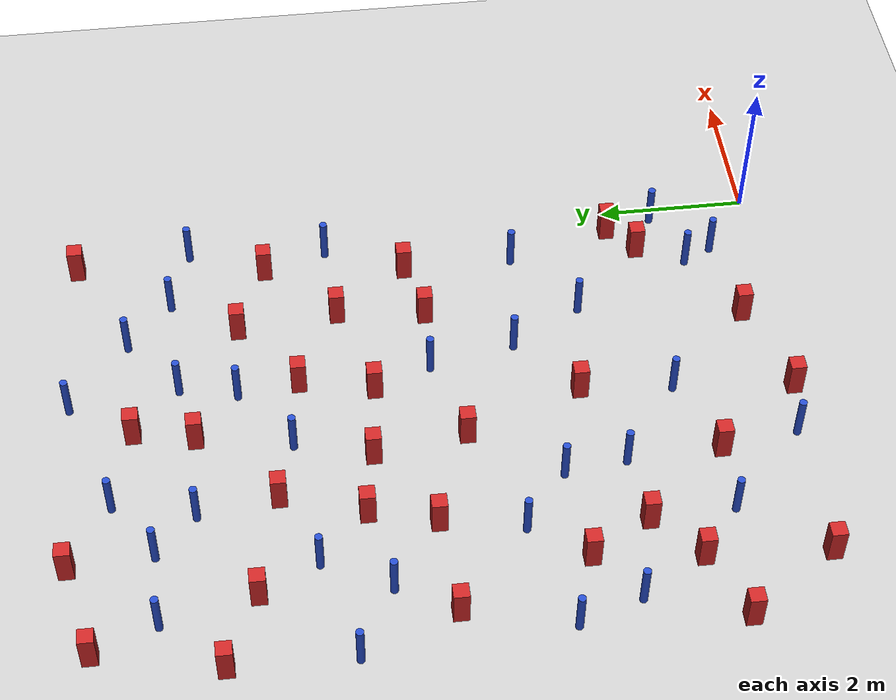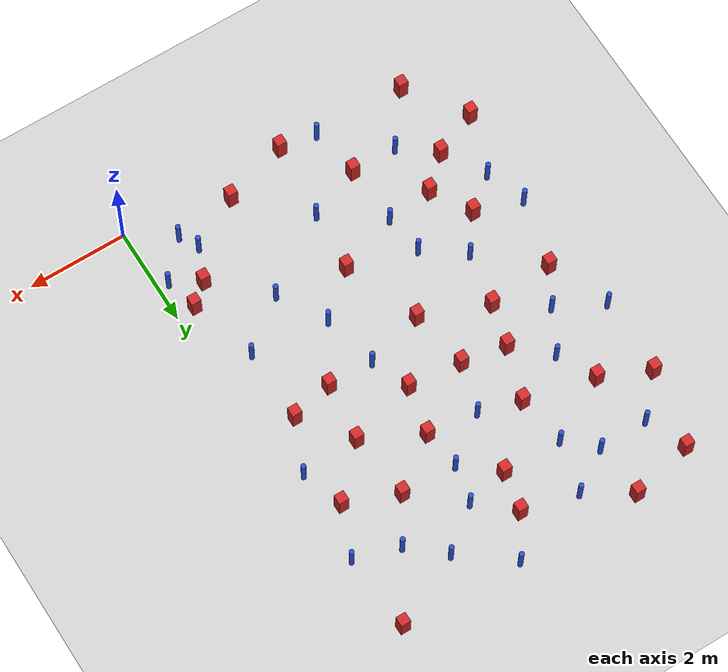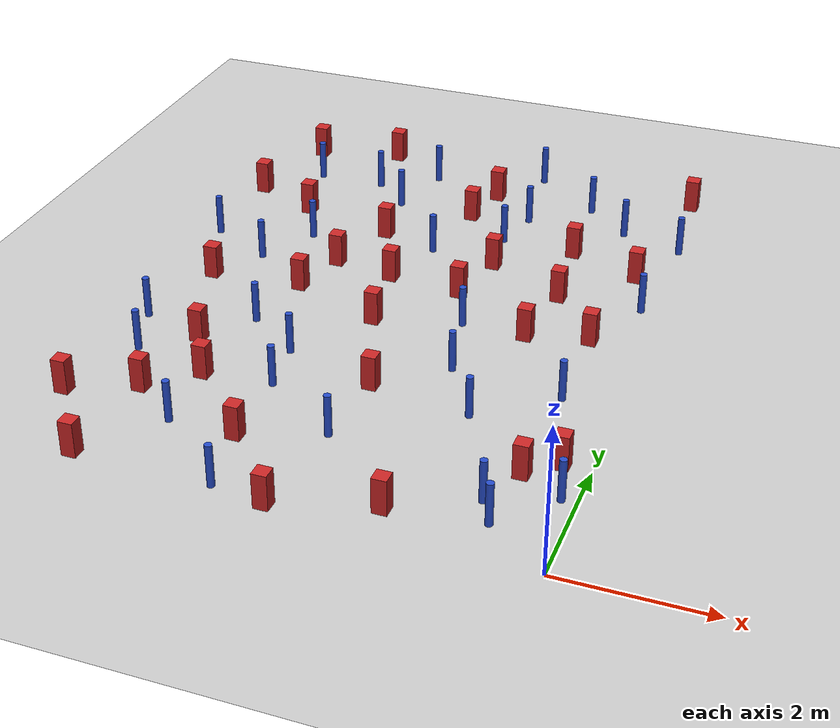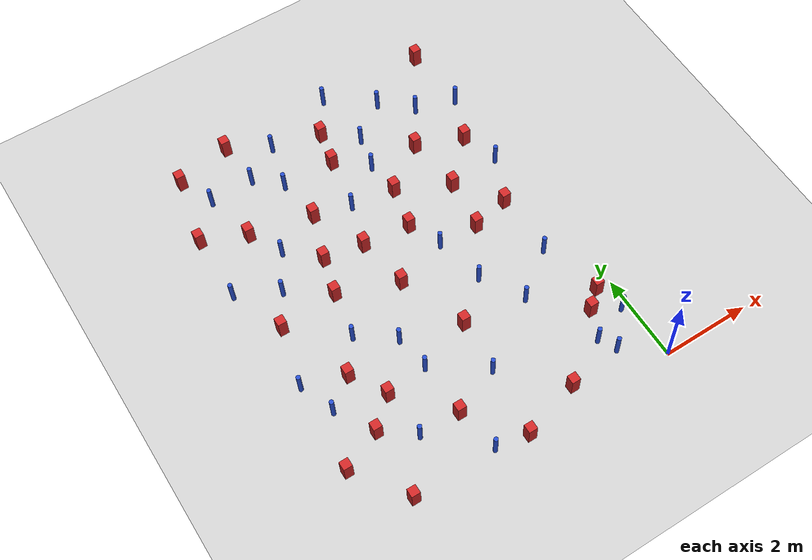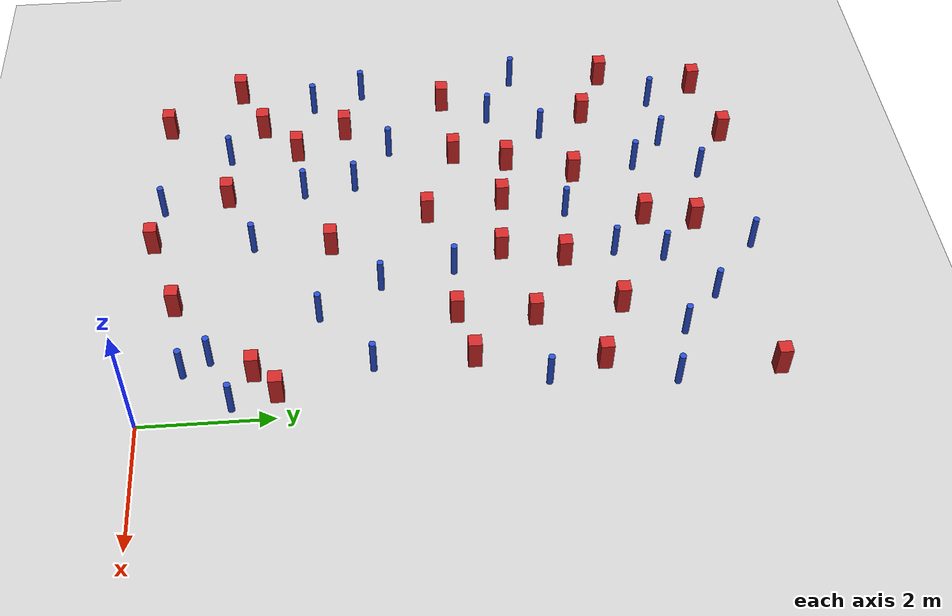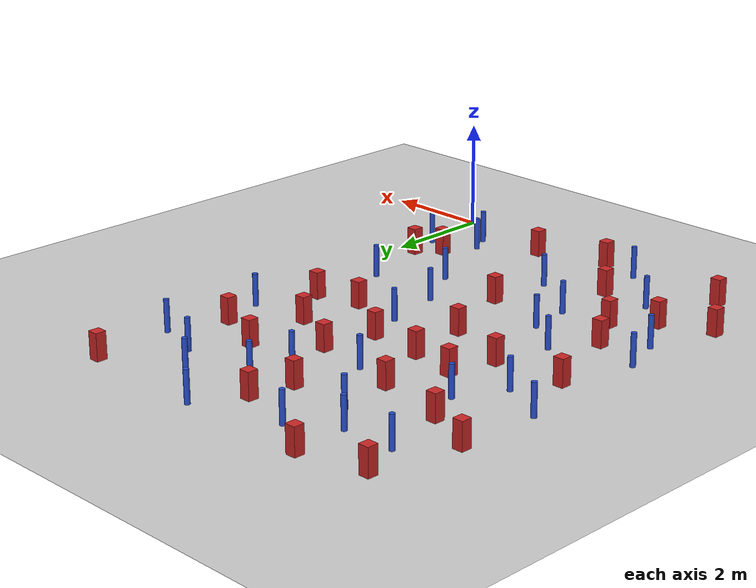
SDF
<sdf version="1.6">
 <world name="default">
  <model name="ground_plane">
   <static>1</static>
   <link name="link">
    <collision name="collision">
     <geometry><plane><normal>0 0 1</normal><size>100 100</size></plane></geometry>
     <surface><friction><ode><mu>100</mu><mu2>50</mu2></ode></friction></surface>
    </collision>
    <visual name="visual">
     <cast_shadows>0</cast_shadows>
     <geometry><plane><normal>0 0 1</normal><size>100 100</size></plane></geometry>
     <material>
      <script><uri>file://media/materials/scripts/gazebo.material</uri><name>Gazebo/Grey</name></script>
     </material>
    </visual>
   </link>
  </model>
  <model name="square_post_obstacle0">
   <static>0</static>
   <link name="link">
    <pose>0 0 0.25 0 -0 0</pose>
    <inertial>
     <mass>100</mass>
     <inertia>
      <ixx>0.166667</ixx>
      <ixy>0</ixy>
      <ixz>0</ixz>
      <iyy>0.166667</iyy>
      <iyz>0</iyz>
      <izz>0.166667</izz>
     </inertia>
    </inertial>
    <collision name="collision"><geometry><box><size>0.2 0.2 0.5</size></box></geometry></collision>
    <visual name="visual">
     <geometry><box><size>0.2 0.2 0.5</size></box></geometry>
     <material>
      <script><name>Gazebo/Red</name><uri>file://media/materials/scripts/gazebo.material</uri></script>
     </material>
    </visual>
   </link>
   <pose>-6.057 0.183912 0 -1e-06 7e-06 -0.000607</pose>
  </model>
  <model name="pole_obstacle0">
   <static>0</static>
   <link name="link">
    <pose>0 0 0.3 0 -0 0</pose>
    <inertial>
     <mass>1</mass>
     <inertia><ixx>0.145833</ixx><ixy>0</ixy><ixz>0</ixz><iyy>0.145833</iyy><iyz>0</iyz><izz>0.125</izz></inertia>
    </inertial>
    <collision name="collision">
     <geometry><cylinder><radius>0.05</radius><length>0.6</length></cylinder></geometry>
    </collision>
    <visual name="visual">
     <geometry><cylinder><radius>0.05</radius><length>0.6</length></cylinder></geometry>
     <material>
      <script><name>Gazebo/Blue</name><uri>file://media/materials/scripts/gazebo.material</uri></script>
     </material>
    </visual>
   </link>
   <pose>-6.20952 8.3445 -5e-06 0 0 -2.6e-05</pose>
  </model>
  <model name="square_post_obstacle2">
   <static>0</static>
   <link name="link">
    <pose>0 0 0.25 0 -0 0</pose>
    <inertial>
     <mass>100</mass>
     <inertia>
      <ixx>0.166667</ixx>
      <ixy>0</ixy>
      <ixz>0</ixz>
      <iyy>0.166667</iyy>
      <iyz>0</iyz>
      <izz>0.166667</izz>
     </inertia>
    </inertial>
    <collision name="collision"><geometry><box><size>0.2 0.2 0.5</size></box></geometry></collision>
    <visual name="visual">
     <geometry><box><size>0.2 0.2 0.5</size></box></geometry>
     <material>
      <script><name>Gazebo/Red</name><uri>file://media/materials/scripts/gazebo.material</uri></script>
     </material>
    </visual>
   </link>
   <pose>-3.76358 4.37344 0 -1e-06 7e-06 -0.000607</pose>
  </model>
  <model name="square_post_obstacle3">
   <static>0</static>
   <link name="link">
    <pose>0 0 0.25 0 -0 0</pose>
    <inertial>
     <mass>100</mass>
     <inertia>
      <ixx>0.166667</ixx>
      <ixy>0</ixy>
      <ixz>0</ixz>
      <iyy>0.166667</iyy>
      <iyz>0</iyz>
      <izz>0.166667</izz>
     </inertia>
    </inertial>
    <collision name="collision"><geometry><box><size>0.2 0.2 0.5</size></box></geometry></collision>
    <visual name="visual">
     <geometry><box><size>0.2 0.2 0.5</size></box></geometry>
     <material>
      <script><name>Gazebo/Red</name><uri>file://media/materials/scripts/gazebo.material</uri></script>
     </material>
    </visual>
   </link>
   <pose>-4.34566 1.1971 0 -1e-06 7e-06 -0.000607</pose>
  </model>
  <model name="pole_obstacle5">
   <static>0</static>
   <link name="link">
    <pose>0 0 0.3 0 -0 0</pose>
    <inertial>
     <mass>1</mass>
     <inertia><ixx>0.145833</ixx><ixy>0</ixy><ixz>0</ixz><iyy>0.145833</iyy><iyz>0</iyz><izz>0.125</izz></inertia>
    </inertial>
    <collision name="collision">
     <geometry><cylinder><radius>0.05</radius><length>0.6</length></cylinder></geometry>
    </collision>
    <visual name="visual">
     <geometry><cylinder><radius>0.05</radius><length>0.6</length></cylinder></geometry>
     <material>
      <script><name>Gazebo/Blue</name><uri>file://media/materials/scripts/gazebo.material</uri></script>
     </material>
    </visual>
   </link>
   <pose>-3.27165 1.61809 -5e-06 0 -0 1.3e-05</pose>
  </model>
  <model name="square_post_obstacle7">
   <static>0</static>
   <link name="link">
    <pose>0 0 0.25 0 -0 0</pose>
    <inertial>
     <mass>100</mass>
     <inertia>
      <ixx>0.166667</ixx>
      <ixy>0</ixy>
      <ixz>0</ixz>
      <iyy>0.166667</iyy>
      <iyz>0</iyz>
      <izz>0.166667</izz>
     </inertia>
    </inertial>
    <collision name="collision"><geometry><box><size>0.2 0.2 0.5</size></box></geometry></collision>
    <visual name="visual">
     <geometry><box><size>0.2 0.2 0.5</size></box></geometry>
     <material>
      <script><name>Gazebo/Red</name><uri>file://media/materials/scripts/gazebo.material</uri></script>
     </material>
    </visual>
   </link>
   <pose>-5.09435 4.88945 0 -1e-06 7e-06 -0.000607</pose>
  </model>
  <model name="pole_obstacle14">
   <static>0</static>
   <link name="link">
    <pose>0 0 0.3 0 -0 0</pose>
    <inertial>
     <mass>1</mass>
     <inertia><ixx>0.145833</ixx><ixy>0</ixy><ixz>0</ixz><iyy>0.145833</iyy><iyz>0</iyz><izz>0.125</izz></inertia>
    </inertial>
    <collision name="collision">
     <geometry><cylinder><radius>0.05</radius><length>0.6</length></cylinder></geometry>
    </collision>
    <visual name="visual">
     <geometry><cylinder><radius>0.05</radius><length>0.6</length></cylinder></geometry>
     <material>
      <script><name>Gazebo/Blue</name><uri>file://media/materials/scripts/gazebo.material</uri></script>
     </material>
    </visual>
   </link>
   <pose>-1.05503 1.01681 -5e-06 0 0 -1.5e-05</pose>
  </model>
  <model name="pole_obstacle15">
   <static>0</static>
   <link name="link">
    <pose>0 0 0.3 0 -0 0</pose>
    <inertial>
     <mass>1</mass>
     <inertia><ixx>0.145833</ixx><ixy>0</ixy><ixz>0</ixz><iyy>0.145833</iyy><iyz>0</iyz><izz>0.125</izz></inertia>
    </inertial>
    <collision name="collision">
     <geometry><cylinder><radius>0.05</radius><length>0.6</length></cylinder></geometry>
    </collision>
    <visual name="visual">
     <geometry><cylinder><radius>0.05</radius><length>0.6</length></cylinder></geometry>
     <material>
      <script><name>Gazebo/Blue</name><uri>file://media/materials/scripts/gazebo.material</uri></script>
     </material>
    </visual>
   </link>
   <pose>-4.40507 8.88915 -5e-06 0 -0 1.9e-05</pose>
  </model>
  <model name="square_post_obstacle13">
   <static>0</static>
   <link name="link">
    <pose>0 0 0.25 0 -0 0</pose>
    <inertial>
     <mass>100</mass>
     <inertia>
      <ixx>0.166667</ixx>
      <ixy>0</ixy>
      <ixz>0</ixz>
      <iyy>0.166667</iyy>
      <iyz>0</iyz>
      <izz>0.166667</izz>
     </inertia>
    </inertial>
    <collision name="collision"><geometry><box><size>0.2 0.2 0.5</size></box></geometry></collision>
    <visual name="visual">
     <geometry><box><size>0.2 0.2 0.5</size></box></geometry>
     <material>
      <script><name>Gazebo/Red</name><uri>file://media/materials/scripts/gazebo.material</uri></script>
     </material>
    </visual>
   </link>
   <pose>-1.67024 7.18728 0 -1e-06 7e-06 -0.000607</pose>
  </model>
  <model name="square_post_obstacle14">
   <static>0</static>
   <link name="link">
    <pose>0 0 0.25 0 -0 0</pose>
    <inertial>
     <mass>100</mass>
     <inertia>
      <ixx>0.166667</ixx>
      <ixy>0</ixy>
      <ixz>0</ixz>
      <iyy>0.166667</iyy>
      <iyz>0</iyz>
      <izz>0.166667</izz>
     </inertia>
    </inertial>
    <collision name="collision"><geometry><box><size>0.2 0.2 0.5</size></box></geometry></collision>
    <visual name="visual">
     <geometry><box><size>0.2 0.2 0.5</size></box></geometry>
     <material>
      <script><name>Gazebo/Red</name><uri>file://media/materials/scripts/gazebo.material</uri></script>
     </material>
    </visual>
   </link>
   <pose>-5.35035 2.31245 0 -1e-06 7e-06 -0.000607</pose>
  </model>
  <model name="square_post_obstacle15">
   <static>0</static>
   <link name="link">
    <pose>0 0 0.25 0 -0 0</pose>
    <inertial>
     <mass>100</mass>
     <inertia>
      <ixx>0.166667</ixx>
      <ixy>0</ixy>
      <ixz>0</ixz>
      <iyy>0.166667</iyy>
      <iyz>0</iyz>
      <izz>0.166667</izz>
     </inertia>
    </inertial>
    <collision name="collision"><geometry><box><size>0.2 0.2 0.5</size></box></geometry></collision>
    <visual name="visual">
     <geometry><box><size>0.2 0.2 0.5</size></box></geometry>
     <material>
      <script><name>Gazebo/Red</name><uri>file://media/materials/scripts/gazebo.material</uri></script>
     </material>
    </visual>
   </link>
   <pose>-0.346075 9.31122 0 -1e-06 7e-06 -0.000607</pose>
  </model>
  <model name="pole_obstacle17">
   <static>0</static>
   <link name="link">
    <pose>0 0 0.3 0 -0 0</pose>
    <inertial>
     <mass>1</mass>
     <inertia><ixx>0.145833</ixx><ixy>0</ixy><ixz>0</ixz><iyy>0.145833</iyy><iyz>0</iyz><izz>0.125</izz></inertia>
    </inertial>
    <collision name="collision">
     <geometry><cylinder><radius>0.05</radius><length>0.6</length></cylinder></geometry>
    </collision>
    <visual name="visual">
     <geometry><cylinder><radius>0.05</radius><length>0.6</length></cylinder></geometry>
     <material>
      <script><name>Gazebo/Blue</name><uri>file://media/materials/scripts/gazebo.material</uri></script>
     </material>
    </visual>
   </link>
   <pose>-5.99466 5.53293 -5e-06 0 0 -6.7e-05</pose>
  </model>
  <model name="pole_obstacle21">
   <static>0</static>
   <link name="link">
    <pose>0 0 0.3 0 -0 0</pose>
    <inertial>
     <mass>1</mass>
     <inertia><ixx>0.145833</ixx><ixy>0</ixy><ixz>0</ixz><iyy>0.145833</iyy><iyz>0</iyz><izz>0.125</izz></inertia>
    </inertial>
    <collision name="collision">
     <geometry><cylinder><radius>0.05</radius><length>0.6</length></cylinder></geometry>
    </collision>
    <visual name="visual">
     <geometry><cylinder><radius>0.05</radius><length>0.6</length></cylinder></geometry>
     <material>
      <script><name>Gazebo/Blue</name><uri>file://media/materials/scripts/gazebo.material</uri></script>
     </material>
    </visual>
   </link>
   <pose>-6.75724 3.41665 -5e-06 0 0 -3e-06</pose>
  </model>
  <model name="square_post_obstacle31">
   <static>0</static>
   <link name="link">
    <pose>0 0 0.25 0 -0 0</pose>
    <inertial>
     <mass>100</mass>
     <inertia>
      <ixx>0.166667</ixx>
      <ixy>0</ixy>
      <ixz>0</ixz>
      <iyy>0.166667</iyy>
      <iyz>0</iyz>
      <izz>0.166667</izz>
     </inertia>
    </inertial>
    <collision name="collision"><geometry><box><size>0.2 0.2 0.5</size></box></geometry></collision>
    <visual name="visual">
     <geometry><box><size>0.2 0.2 0.5</size></box></geometry>
     <material>
      <script><name>Gazebo/Red</name><uri>file://media/materials/scripts/gazebo.material</uri></script>
     </material>
    </visual>
   </link>
   <pose>-1.65966 4.68439 0 -1e-06 7e-06 -0.000607</pose>
  </model>
  <model name="pole_obstacle31">
   <static>0</static>
   <link name="link">
    <pose>0 0 0.3 0 -0 0</pose>
    <inertial>
     <mass>1</mass>
     <inertia><ixx>0.145833</ixx><ixy>0</ixy><ixz>0</ixz><iyy>0.145833</iyy><iyz>0</iyz><izz>0.125</izz></inertia>
    </inertial>
    <collision name="collision">
     <geometry><cylinder><radius>0.05</radius><length>0.6</length></cylinder></geometry>
    </collision>
    <visual name="visual">
     <geometry><cylinder><radius>0.05</radius><length>0.6</length></cylinder></geometry>
     <material>
      <script><name>Gazebo/Blue</name><uri>file://media/materials/scripts/gazebo.material</uri></script>
     </material>
    </visual>
   </link>
   <pose>-0.1998 1.35164 -5e-06 0 -0 9.9e-05</pose>
  </model>
  <model name="square_post_obstacle35">
   <static>0</static>
   <link name="link">
    <pose>0 0 0.25 0 -0 0</pose>
    <inertial>
     <mass>100</mass>
     <inertia>
      <ixx>0.166667</ixx>
      <ixy>0</ixy>
      <ixz>0</ixz>
      <iyy>0.166667</iyy>
      <iyz>0</iyz>
      <izz>0.166667</izz>
     </inertia>
    </inertial>
    <collision name="collision"><geometry><box><size>0.2 0.2 0.5</size></box></geometry></collision>
    <visual name="visual">
     <geometry><box><size>0.2 0.2 0.5</size></box></geometry>
     <material>
      <script><name>Gazebo/Red</name><uri>file://media/materials/scripts/gazebo.material</uri></script>
     </material>
    </visual>
   </link>
   <pose>-3.42467 0.050332 0 -1e-06 7e-06 -0.000607</pose>
  </model>
  <model name="square_post_obstacle36">
   <static>0</static>
   <link name="link">
    <pose>0 0 0.25 0 -0 0</pose>
    <inertial>
     <mass>100</mass>
     <inertia>
      <ixx>0.166667</ixx>
      <ixy>0</ixy>
      <ixz>0</ixz>
      <iyy>0.166667</iyy>
      <iyz>0</iyz>
      <izz>0.166667</izz>
     </inertia>
    </inertial>
    <collision name="collision"><geometry><box><size>0.2 0.2 0.5</size></box></geometry></collision>
    <visual name="visual">
     <geometry><box><size>0.2 0.2 0.5</size></box></geometry>
     <material>
      <script><name>Gazebo/Red</name><uri>file://media/materials/scripts/gazebo.material</uri></script>
     </material>
    </visual>
   </link>
   <pose>-0.80227 4.87784 0 -1e-06 7e-06 -0.000607</pose>
  </model>
  <model name="pole_obstacle32">
   <static>0</static>
   <link name="link">
    <pose>0 0 0.3 0 -0 0</pose>
    <inertial>
     <mass>1</mass>
     <inertia><ixx>0.145833</ixx><ixy>0</ixy><ixz>0</ixz><iyy>0.145833</iyy><iyz>0</iyz><izz>0.125</izz></inertia>
    </inertial>
    <collision name="collision">
     <geometry><cylinder><radius>0.05</radius><length>0.6</length></cylinder></geometry>
    </collision>
    <visual name="visual">
     <geometry><cylinder><radius>0.05</radius><length>0.6</length></cylinder></geometry>
     <material>
      <script><name>Gazebo/Blue</name><uri>file://media/materials/scripts/gazebo.material</uri></script>
     </material>
    </visual>
   </link>
   <pose>-4.51287 3.23499 -5e-06 0 0 -0.00015</pose>
  </model>
  <model name="pole_obstacle33">
   <static>0</static>
   <link name="link">
    <pose>0 0 0.3 0 -0 0</pose>
    <inertial>
     <mass>1</mass>
     <inertia><ixx>0.145833</ixx><ixy>0</ixy><ixz>0</ixz><iyy>0.145833</iyy><iyz>0</iyz><izz>0.125</izz></inertia>
    </inertial>
    <collision name="collision">
     <geometry><cylinder><radius>0.05</radius><length>0.6</length></cylinder></geometry>
    </collision>
    <visual name="visual">
     <geometry><cylinder><radius>0.05</radius><length>0.6</length></cylinder></geometry>
     <material>
      <script><name>Gazebo/Blue</name><uri>file://media/materials/scripts/gazebo.material</uri></script>
     </material>
    </visual>
   </link>
   <pose>-4.39979 2.42005 -5e-06 0 0 -0.00015</pose>
  </model>
  <model name="pole_obstacle35">
   <static>0</static>
   <link name="link">
    <pose>0 0 0.3 0 -0 0</pose>
    <inertial>
     <mass>1</mass>
     <inertia><ixx>0.145833</ixx><ixy>0</ixy><ixz>0</ixz><iyy>0.145833</iyy><iyz>0</iyz><izz>0.125</izz></inertia>
    </inertial>
    <collision name="collision">
     <geometry><cylinder><radius>0.05</radius><length>0.6</length></cylinder></geometry>
    </collision>
    <visual name="visual">
     <geometry><cylinder><radius>0.05</radius><length>0.6</length></cylinder></geometry>
     <material>
      <script><name>Gazebo/Blue</name><uri>file://media/materials/scripts/gazebo.material</uri></script>
     </material>
    </visual>
   </link>
   <pose>-0.852611 0.627891 -5e-06 0 0 -2.5e-05</pose>
  </model>
  <model name="pole_obstacle38">
   <static>0</static>
   <link name="link">
    <pose>0 0 0.3 0 -0 0</pose>
    <inertial>
     <mass>1</mass>
     <inertia><ixx>0.145833</ixx><ixy>0</ixy><ixz>0</ixz><iyy>0.145833</iyy><iyz>0</iyz><izz>0.125</izz></inertia>
    </inertial>
    <collision name="collision">
     <geometry><cylinder><radius>0.05</radius><length>0.6</length></cylinder></geometry>
    </collision>
    <visual name="visual">
     <geometry><cylinder><radius>0.05</radius><length>0.6</length></cylinder></geometry>
     <material>
      <script><name>Gazebo/Blue</name><uri>file://media/materials/scripts/gazebo.material</uri></script>
     </material>
    </visual>
   </link>
   <pose>-1.78259 8.6499 -5e-06 0 -0 1e-06</pose>
  </model>
  <model name="square_post_obstacle37">
   <static>0</static>
   <link name="link">
    <pose>0 0 0.25 0 -0 0</pose>
    <inertial>
     <mass>100</mass>
     <inertia>
      <ixx>0.166667</ixx>
      <ixy>0</ixy>
      <ixz>0</ixz>
      <iyy>0.166667</iyy>
      <iyz>0</iyz>
      <izz>0.166667</izz>
     </inertia>
    </inertial>
    <collision name="collision"><geometry><box><size>0.2 0.2 0.5</size></box></geometry></collision>
    <visual name="visual">
     <geometry><box><size>0.2 0.2 0.5</size></box></geometry>
     <material>
      <script><name>Gazebo/Red</name><uri>file://media/materials/scripts/gazebo.material</uri></script>
     </material>
    </visual>
   </link>
   <pose>-5.29714 9.43185 0 -1e-06 7e-06 -0.000607</pose>
  </model>
  <model name="square_post_obstacle38">
   <static>0</static>
   <link name="link">
    <pose>0 0 0.25 0 -0 0</pose>
    <inertial>
     <mass>100</mass>
     <inertia>
      <ixx>0.166667</ixx>
      <ixy>0</ixy>
      <ixz>0</ixz>
      <iyy>0.166667</iyy>
      <iyz>0</iyz>
      <izz>0.166667</izz>
     </inertia>
    </inertial>
    <collision name="collision"><geometry><box><size>0.2 0.2 0.5</size></box></geometry></collision>
    <visual name="visual">
     <geometry><box><size>0.2 0.2 0.5</size></box></geometry>
     <material>
      <script><name>Gazebo/Red</name><uri>file://media/materials/scripts/gazebo.material</uri></script>
     </material>
    </visual>
   </link>
   <pose>-2.68079 6.44468 0 -1e-06 7e-06 -0.000607</pose>
  </model>
  <model name="square_post_obstacle41">
   <static>0</static>
   <link name="link">
    <pose>0 0 0.25 0 -0 0</pose>
    <inertial>
     <mass>100</mass>
     <inertia>
      <ixx>0.166667</ixx>
      <ixy>0</ixy>
      <ixz>0</ixz>
      <iyy>0.166667</iyy>
      <iyz>0</iyz>
      <izz>0.166667</izz>
     </inertia>
    </inertial>
    <collision name="collision"><geometry><box><size>0.2 0.2 0.5</size></box></geometry></collision>
    <visual name="visual">
     <geometry><box><size>0.2 0.2 0.5</size></box></geometry>
     <material>
      <script><name>Gazebo/Red</name><uri>file://media/materials/scripts/gazebo.material</uri></script>
     </material>
    </visual>
   </link>
   <pose>-0.626916 6.77178 0 -1e-06 7e-06 -0.000607</pose>
  </model>
  <model name="square_post_obstacle43">
   <static>0</static>
   <link name="link">
    <pose>0 0 0.25 0 -0 0</pose>
    <inertial>
     <mass>100</mass>
     <inertia>
      <ixx>0.166667</ixx>
      <ixy>0</ixy>
      <ixz>0</ixz>
      <iyy>0.166667</iyy>
      <iyz>0</iyz>
      <izz>0.166667</izz>
     </inertia>
    </inertial>
    <collision name="collision"><geometry><box><size>0.2 0.2 0.5</size></box></geometry></collision>
    <visual name="visual">
     <geometry><box><size>0.2 0.2 0.5</size></box></geometry>
     <material>
      <script><name>Gazebo/Red</name><uri>file://media/materials/scripts/gazebo.material</uri></script>
     </material>
    </visual>
   </link>
   <pose>-6.87258 1.36134 0 -1e-06 7e-06 -0.000607</pose>
  </model>
  <model name="square_post_obstacle44">
   <static>0</static>
   <link name="link">
    <pose>0 0 0.25 0 -0 0</pose>
    <inertial>
     <mass>100</mass>
     <inertia>
      <ixx>0.166667</ixx>
      <ixy>0</ixy>
      <ixz>0</ixz>
      <iyy>0.166667</iyy>
      <iyz>0</iyz>
      <izz>0.166667</izz>
     </inertia>
    </inertial>
    <collision name="collision"><geometry><box><size>0.2 0.2 0.5</size></box></geometry></collision>
    <visual name="visual">
     <geometry><box><size>0.2 0.2 0.5</size></box></geometry>
     <material>
      <script><name>Gazebo/Red</name><uri>file://media/materials/scripts/gazebo.material</uri></script>
     </material>
    </visual>
   </link>
   <pose>-5.81455 3.10909 0 -1e-06 7e-06 -0.000607</pose>
  </model>
  <model name="square_post_obstacle50">
   <static>0</static>
   <link name="link">
    <pose>0 0 0.25 0 -0 0</pose>
    <inertial>
     <mass>100</mass>
     <inertia>
      <ixx>0.166667</ixx>
      <ixy>0</ixy>
      <ixz>0</ixz>
      <iyy>0.166667</iyy>
      <iyz>0</iyz>
      <izz>0.166667</izz>
     </inertia>
    </inertial>
    <collision name="collision"><geometry><box><size>0.2 0.2 0.5</size></box></geometry></collision>
    <visual name="visual">
     <geometry><box><size>0.2 0.2 0.5</size></box></geometry>
     <material>
      <script><name>Gazebo/Red</name><uri>file://media/materials/scripts/gazebo.material</uri></script>
     </material>
    </visual>
   </link>
   <pose>-6.42275 4.78788 0 -1e-06 7e-06 -0.000607</pose>
  </model>
  <model name="pole_obstacle46">
   <static>0</static>
   <link name="link">
    <pose>0 0 0.3 0 -0 0</pose>
    <inertial>
     <mass>1</mass>
     <inertia><ixx>0.145833</ixx><ixy>0</ixy><ixz>0</ixz><iyy>0.145833</iyy><iyz>0</iyz><izz>0.125</izz></inertia>
    </inertial>
    <collision name="collision">
     <geometry><cylinder><radius>0.05</radius><length>0.6</length></cylinder></geometry>
    </collision>
    <visual name="visual">
     <geometry><cylinder><radius>0.05</radius><length>0.6</length></cylinder></geometry>
     <material>
      <script><name>Gazebo/Blue</name><uri>file://media/materials/scripts/gazebo.material</uri></script>
     </material>
    </visual>
   </link>
   <pose>-5.53856 6.38623 -5e-06 0 0 -6.6e-05</pose>
  </model>
  <model name="pole_obstacle53">
   <static>0</static>
   <link name="link">
    <pose>0 0 0.3 0 -0 0</pose>
    <inertial>
     <mass>1</mass>
     <inertia><ixx>0.145833</ixx><ixy>0</ixy><ixz>0</ixz><iyy>0.145833</iyy><iyz>0</iyz><izz>0.125</izz></inertia>
    </inertial>
    <collision name="collision">
     <geometry><cylinder><radius>0.05</radius><length>0.6</length></cylinder></geometry>
    </collision>
    <visual name="visual">
     <geometry><cylinder><radius>0.05</radius><length>0.6</length></cylinder></geometry>
     <material>
      <script><name>Gazebo/Blue</name><uri>file://media/materials/scripts/gazebo.material</uri></script>
     </material>
    </visual>
   </link>
   <pose>-0.214852 7.78259 -5e-06 0 0 -0.00017</pose>
  </model>
  <model name="square_post_obstacle54">
   <static>0</static>
   <link name="link">
    <pose>0 0 0.25 0 -0 0</pose>
    <inertial>
     <mass>100</mass>
     <inertia>
      <ixx>0.166667</ixx>
      <ixy>0</ixy>
      <ixz>0</ixz>
      <iyy>0.166667</iyy>
      <iyz>0</iyz>
      <izz>0.166667</izz>
     </inertia>
    </inertial>
    <collision name="collision"><geometry><box><size>0.2 0.2 0.5</size></box></geometry></collision>
    <visual name="visual">
     <geometry><box><size>0.2 0.2 0.5</size></box></geometry>
     <material>
      <script><name>Gazebo/Red</name><uri>file://media/materials/scripts/gazebo.material</uri></script>
     </material>
    </visual>
   </link>
   <pose>-1.52529 5.85384 0 -1e-06 7e-06 -0.000607</pose>
  </model>
  <model name="pole_obstacle57">
   <static>0</static>
   <link name="link">
    <pose>0 0 0.3 0 -0 0</pose>
    <inertial>
     <mass>1</mass>
     <inertia><ixx>0.145833</ixx><ixy>0</ixy><ixz>0</ixz><iyy>0.145833</iyy><iyz>0</iyz><izz>0.125</izz></inertia>
    </inertial>
    <collision name="collision">
     <geometry><cylinder><radius>0.05</radius><length>0.6</length></cylinder></geometry>
    </collision>
    <visual name="visual">
     <geometry><cylinder><radius>0.05</radius><length>0.6</length></cylinder></geometry>
     <material>
      <script><name>Gazebo/Blue</name><uri>file://media/materials/scripts/gazebo.material</uri></script>
     </material>
    </visual>
   </link>
   <pose>-1.11988 8.05863 -5e-06 0 0 -1.5e-05</pose>
  </model>
  <model name="pole_obstacle60">
   <static>0</static>
   <link name="link">
    <pose>0 0 0.3 0 -0 0</pose>
    <inertial>
     <mass>1</mass>
     <inertia><ixx>0.145833</ixx><ixy>0</ixy><ixz>0</ixz><iyy>0.145833</iyy><iyz>0</iyz><izz>0.125</izz></inertia>
    </inertial>
    <collision name="collision">
     <geometry><cylinder><radius>0.05</radius><length>0.6</length></cylinder></geometry>
    </collision>
    <visual name="visual">
     <geometry><cylinder><radius>0.05</radius><length>0.6</length></cylinder></geometry>
     <material>
      <script><name>Gazebo/Blue</name><uri>file://media/materials/scripts/gazebo.material</uri></script>
     </material>
    </visual>
   </link>
   <pose>-5.29189 3.82545 -5e-06 0 0 -1.5e-05</pose>
  </model>
  <model name="pole_obstacle61">
   <static>0</static>
   <link name="link">
    <pose>0 0 0.3 0 -0 0</pose>
    <inertial>
     <mass>1</mass>
     <inertia><ixx>0.145833</ixx><ixy>0</ixy><ixz>0</ixz><iyy>0.145833</iyy><iyz>0</iyz><izz>0.125</izz></inertia>
    </inertial>
    <collision name="collision">
     <geometry><cylinder><radius>0.05</radius><length>0.6</length></cylinder></geometry>
    </collision>
    <visual name="visual">
     <geometry><cylinder><radius>0.05</radius><length>0.6</length></cylinder></geometry>
     <material>
      <script><name>Gazebo/Blue</name><uri>file://media/materials/scripts/gazebo.material</uri></script>
     </material>
    </visual>
   </link>
   <pose>-2.32573 3.57509 -5e-06 0 0 -4e-05</pose>
  </model>
  <model name="pole_obstacle62">
   <static>0</static>
   <link name="link">
    <pose>0 0 0.3 0 -0 0</pose>
    <inertial>
     <mass>1</mass>
     <inertia><ixx>0.145833</ixx><ixy>0</ixy><ixz>0</ixz><iyy>0.145833</iyy><iyz>0</iyz><izz>0.125</izz></inertia>
    </inertial>
    <collision name="collision">
     <geometry><cylinder><radius>0.05</radius><length>0.6</length></cylinder></geometry>
    </collision>
    <visual name="visual">
     <geometry><cylinder><radius>0.05</radius><length>0.6</length></cylinder></geometry>
     <material>
      <script><name>Gazebo/Blue</name><uri>file://media/materials/scripts/gazebo.material</uri></script>
     </material>
    </visual>
   </link>
   <pose>-6.92216 6.01851 -5e-06 0 0 -6.6e-05</pose>
  </model>
  <model name="pole_obstacle69">
   <static>0</static>
   <link name="link">
    <pose>0 0 0.3 0 -0 0</pose>
    <inertial>
     <mass>1</mass>
     <inertia><ixx>0.145833</ixx><ixy>0</ixy><ixz>0</ixz><iyy>0.145833</iyy><iyz>0</iyz><izz>0.125</izz></inertia>
    </inertial>
    <collision name="collision">
     <geometry><cylinder><radius>0.05</radius><length>0.6</length></cylinder></geometry>
    </collision>
    <visual name="visual">
     <geometry><cylinder><radius>0.05</radius><length>0.6</length></cylinder></geometry>
     <material>
      <script><name>Gazebo/Blue</name><uri>file://media/materials/scripts/gazebo.material</uri></script>
     </material>
    </visual>
   </link>
   <pose>-1.76915 2.62419 -5e-06 0 0 -5.1e-05</pose>
  </model>
  <model name="pole_obstacle72">
   <static>0</static>
   <link name="link">
    <pose>0 0 0.3 0 -0 0</pose>
    <inertial>
     <mass>1</mass>
     <inertia><ixx>0.145833</ixx><ixy>0</ixy><ixz>0</ixz><iyy>0.145833</iyy><iyz>0</iyz><izz>0.125</izz></inertia>
    </inertial>
    <collision name="collision">
     <geometry><cylinder><radius>0.05</radius><length>0.6</length></cylinder></geometry>
    </collision>
    <visual name="visual">
     <geometry><cylinder><radius>0.05</radius><length>0.6</length></cylinder></geometry>
     <material>
      <script><name>Gazebo/Blue</name><uri>file://media/materials/scripts/gazebo.material</uri></script>
     </material>
    </visual>
   </link>
   <pose>-2.77765 9.41835 -5e-06 0 -0 2.5e-05</pose>
  </model>
  <model name="square_post_obstacle71">
   <static>0</static>
   <link name="link">
    <pose>0 0 0.25 0 -0 0</pose>
    <inertial>
     <mass>100</mass>
     <inertia>
      <ixx>0.166667</ixx>
      <ixy>0</ixy>
      <ixz>0</ixz>
      <iyy>0.166667</iyy>
      <iyz>0</iyz>
      <izz>0.166667</izz>
     </inertia>
    </inertial>
    <collision name="collision"><geometry><box><size>0.2 0.2 0.5</size></box></geometry></collision>
    <visual name="visual">
     <geometry><box><size>0.2 0.2 0.5</size></box></geometry>
     <material>
      <script><name>Gazebo/Red</name><uri>file://media/materials/scripts/gazebo.material</uri></script>
     </material>
    </visual>
   </link>
   <pose>-5.92645 7.14715 0 -1e-06 7e-06 -0.000607</pose>
  </model>
  <model name="pole_obstacle75">
   <static>0</static>
   <link name="link">
    <pose>0 0 0.3 0 -0 0</pose>
    <inertial>
     <mass>1</mass>
     <inertia><ixx>0.145833</ixx><ixy>0</ixy><ixz>0</ixz><iyy>0.145833</iyy><iyz>0</iyz><izz>0.125</izz></inertia>
    </inertial>
    <collision name="collision">
     <geometry><cylinder><radius>0.05</radius><length>0.6</length></cylinder></geometry>
    </collision>
    <visual name="visual">
     <geometry><cylinder><radius>0.05</radius><length>0.6</length></cylinder></geometry>
     <material>
      <script><name>Gazebo/Blue</name><uri>file://media/materials/scripts/gazebo.material</uri></script>
     </material>
    </visual>
   </link>
   <pose>-5.20765 8.36648 -5e-06 0 0 -2.6e-05</pose>
  </model>
  <model name="square_post_obstacle75">
   <static>0</static>
   <link name="link">
    <pose>0 0 0.25 0 -0 0</pose>
    <inertial>
     <mass>100</mass>
     <inertia>
      <ixx>0.166667</ixx>
      <ixy>0</ixy>
      <ixz>0</ixz>
      <iyy>0.166667</iyy>
      <iyz>0</iyz>
      <izz>0.166667</izz>
     </inertia>
    </inertial>
    <collision name="collision"><geometry><box><size>0.2 0.2 0.5</size></box></geometry></collision>
    <visual name="visual">
     <geometry><box><size>0.2 0.2 0.5</size></box></geometry>
     <material>
      <script><name>Gazebo/Red</name><uri>file://media/materials/scripts/gazebo.material</uri></script>
     </material>
    </visual>
   </link>
   <pose>-3.47001 7.81263 0 -1e-06 7e-06 -0.000607</pose>
  </model>
  <model name="pole_obstacle77">
   <static>0</static>
   <link name="link">
    <pose>0 0 0.3 0 -0 0</pose>
    <inertial>
     <mass>1</mass>
     <inertia><ixx>0.145833</ixx><ixy>0</ixy><ixz>0</ixz><iyy>0.145833</iyy><iyz>0</iyz><izz>0.125</izz></inertia>
    </inertial>
    <collision name="collision">
     <geometry><cylinder><radius>0.05</radius><length>0.6</length></cylinder></geometry>
    </collision>
    <visual name="visual">
     <geometry><cylinder><radius>0.05</radius><length>0.6</length></cylinder></geometry>
     <material>
      <script><name>Gazebo/Blue</name><uri>file://media/materials/scripts/gazebo.material</uri></script>
     </material>
    </visual>
   </link>
   <pose>-2.57456 4.7129 -5e-06 0 0 -1e-05</pose>
  </model>
  <model name="square_post_obstacle81">
   <static>0</static>
   <link name="link">
    <pose>0 0 0.25 0 -0 0</pose>
    <inertial>
     <mass>100</mass>
     <inertia>
      <ixx>0.166667</ixx>
      <ixy>0</ixy>
      <ixz>0</ixz>
      <iyy>0.166667</iyy>
      <iyz>0</iyz>
      <izz>0.166667</izz>
     </inertia>
    </inertial>
    <collision name="collision"><geometry><box><size>0.2 0.2 0.5</size></box></geometry></collision>
    <visual name="visual">
     <geometry><box><size>0.2 0.2 0.5</size></box></geometry>
     <material>
      <script><name>Gazebo/Red</name><uri>file://media/materials/scripts/gazebo.material</uri></script>
     </material>
    </visual>
   </link>
   <pose>-5.9619 1.75044 0 -1e-06 7e-06 -0.000607</pose>
  </model>
  <model name="square_post_obstacle85">
   <static>0</static>
   <link name="link">
    <pose>0 0 0.25 0 -0 0</pose>
    <inertial>
     <mass>100</mass>
     <inertia>
      <ixx>0.166667</ixx>
      <ixy>0</ixy>
      <ixz>0</ixz>
      <iyy>0.166667</iyy>
      <iyz>0</iyz>
      <izz>0.166667</izz>
     </inertia>
    </inertial>
    <collision name="collision"><geometry><box><size>0.2 0.2 0.5</size></box></geometry></collision>
    <visual name="visual">
     <geometry><box><size>0.2 0.2 0.5</size></box></geometry>
     <material>
      <script><name>Gazebo/Red</name><uri>file://media/materials/scripts/gazebo.material</uri></script>
     </material>
    </visual>
   </link>
   <pose>-3.30175 8.60179 0 -1e-06 7e-06 -0.000607</pose>
  </model>
  <model name="pole_obstacle84">
   <static>0</static>
   <link name="link">
    <pose>0 0 0.3 0 -0 0</pose>
    <inertial>
     <mass>1</mass>
     <inertia><ixx>0.145833</ixx><ixy>0</ixy><ixz>0</ixz><iyy>0.145833</iyy><iyz>0</iyz><izz>0.125</izz></inertia>
    </inertial>
    <collision name="collision">
     <geometry><cylinder><radius>0.05</radius><length>0.6</length></cylinder></geometry>
    </collision>
    <visual name="visual">
     <geometry><cylinder><radius>0.05</radius><length>0.6</length></cylinder></geometry>
     <material>
      <script><name>Gazebo/Blue</name><uri>file://media/materials/scripts/gazebo.material</uri></script>
     </material>
    </visual>
   </link>
   <pose>-0.773284 3.39951 -5e-06 0 0 -8.1e-05</pose>
  </model>
  <model name="square_post_obstacle88">
   <static>0</static>
   <link name="link">
    <pose>0 0 0.25 0 -0 0</pose>
    <inertial>
     <mass>100</mass>
     <inertia>
      <ixx>0.166667</ixx>
      <ixy>0</ixy>
      <ixz>0</ixz>
      <iyy>0.166667</iyy>
      <iyz>0</iyz>
      <izz>0.166667</izz>
     </inertia>
    </inertial>
    <collision name="collision"><geometry><box><size>0.2 0.2 0.5</size></box></geometry></collision>
    <visual name="visual">
     <geometry><box><size>0.2 0.2 0.5</size></box></geometry>
     <material>
      <script><name>Gazebo/Red</name><uri>file://media/materials/scripts/gazebo.material</uri></script>
     </material>
    </visual>
   </link>
   <pose>-6.89609 7.58093 0 -1e-06 7e-06 -0.000607</pose>
  </model>
  <model name="pole_obstacle85">
   <static>0</static>
   <link name="link">
    <pose>0 0 0.3 0 -0 0</pose>
    <inertial>
     <mass>1</mass>
     <inertia><ixx>0.145833</ixx><ixy>0</ixy><ixz>0</ixz><iyy>0.145833</iyy><iyz>0</iyz><izz>0.125</izz></inertia>
    </inertial>
    <collision name="collision">
     <geometry><cylinder><radius>0.05</radius><length>0.6</length></cylinder></geometry>
    </collision>
    <visual name="visual">
     <geometry><cylinder><radius>0.05</radius><length>0.6</length></cylinder></geometry>
     <material>
      <script><name>Gazebo/Blue</name><uri>file://media/materials/scripts/gazebo.material</uri></script>
     </material>
    </visual>
   </link>
   <pose>-5.27756 1.21057 -5e-06 0 0 -5.9e-05</pose>
  </model>
  <model name="square_post_obstacle92">
   <static>0</static>
   <link name="link">
    <pose>0 0 0.25 0 -0 0</pose>
    <inertial>
     <mass>100</mass>
     <inertia>
      <ixx>0.166667</ixx>
      <ixy>0</ixy>
      <ixz>0</ixz>
      <iyy>0.166667</iyy>
      <iyz>0</iyz>
      <izz>0.166667</izz>
     </inertia>
    </inertial>
    <collision name="collision"><geometry><box><size>0.2 0.2 0.5</size></box></geometry></collision>
    <visual name="visual">
     <geometry><box><size>0.2 0.2 0.5</size></box></geometry>
     <material>
      <script><name>Gazebo/Red</name><uri>file://media/materials/scripts/gazebo.material</uri></script>
     </material>
    </visual>
   </link>
   <pose>-3.96615 5.58844 0 -1e-06 7e-06 -0.000607</pose>
  </model>
  <model name="pole_obstacle92">
   <static>0</static>
   <link name="link">
    <pose>0 0 0.3 0 -0 0</pose>
    <inertial>
     <mass>1</mass>
     <inertia><ixx>0.145833</ixx><ixy>0</ixy><ixz>0</ixz><iyy>0.145833</iyy><iyz>0</iyz><izz>0.125</izz></inertia>
    </inertial>
    <collision name="collision">
     <geometry><cylinder><radius>0.05</radius><length>0.6</length></cylinder></geometry>
    </collision>
    <visual name="visual">
     <geometry><cylinder><radius>0.05</radius><length>0.6</length></cylinder></geometry>
     <material>
      <script><name>Gazebo/Blue</name><uri>file://media/materials/scripts/gazebo.material</uri></script>
     </material>
    </visual>
   </link>
   <pose>-2.60929 7.99892 -5e-06 0 -0 4.7e-05</pose>
  </model>
  <model name="pole_obstacle93">
   <static>0</static>
   <link name="link">
    <pose>0 0 0.3 0 -0 0</pose>
    <inertial>
     <mass>1</mass>
     <inertia><ixx>0.145833</ixx><ixy>0</ixy><ixz>0</ixz><iyy>0.145833</iyy><iyz>0</iyz><izz>0.125</izz></inertia>
    </inertial>
    <collision name="collision">
     <geometry><cylinder><radius>0.05</radius><length>0.6</length></cylinder></geometry>
    </collision>
    <visual name="visual">
     <geometry><cylinder><radius>0.05</radius><length>0.6</length></cylinder></geometry>
     <material>
      <script><name>Gazebo/Blue</name><uri>file://media/materials/scripts/gazebo.material</uri></script>
     </material>
    </visual>
   </link>
   <pose>-6.46764 2.59576 -5e-06 0 0 -3e-06</pose>
  </model>
  <model name="square_post_obstacle98">
   <static>0</static>
   <link name="link">
    <pose>0 0 0.25 0 -0 0</pose>
    <inertial>
     <mass>100</mass>
     <inertia>
      <ixx>0.166667</ixx>
      <ixy>0</ixy>
      <ixz>0</ixz>
      <iyy>0.166667</iyy>
      <iyz>0</iyz>
      <izz>0.166667</izz>
     </inertia>
    </inertial>
    <collision name="collision"><geometry><box><size>0.2 0.2 0.5</size></box></geometry></collision>
    <visual name="visual">
     <geometry><box><size>0.2 0.2 0.5</size></box></geometry>
     <material>
      <script><name>Gazebo/Red</name><uri>file://media/materials/scripts/gazebo.material</uri></script>
     </material>
    </visual>
   </link>
   <pose>-3.18503 2.83016 0 -1e-06 7e-06 -0.000607</pose>
  </model>
  <model name="pole_obstacle100">
   <static>0</static>
   <link name="link">
    <pose>0 0 0.3 0 -0 0</pose>
    <inertial>
     <mass>1</mass>
     <inertia><ixx>0.145833</ixx><ixy>0</ixy><ixz>0</ixz><iyy>0.145833</iyy><iyz>0</iyz><izz>0.125</izz></inertia>
    </inertial>
    <collision name="collision">
     <geometry><cylinder><radius>0.05</radius><length>0.6</length></cylinder></geometry>
    </collision>
    <visual name="visual">
     <geometry><cylinder><radius>0.05</radius><length>0.6</length></cylinder></geometry>
     <material>
      <script><name>Gazebo/Blue</name><uri>file://media/materials/scripts/gazebo.material</uri></script>
     </material>
    </visual>
   </link>
   <pose>-4.16867 0.173772 -5e-06 0 -0 2e-06</pose>
  </model>
  <model name="square_post_obstacle107">
   <static>0</static>
   <link name="link">
    <pose>0 0 0.25 0 -0 0</pose>
    <inertial>
     <mass>100</mass>
     <inertia>
      <ixx>0.166667</ixx>
      <ixy>0</ixy>
      <ixz>0</ixz>
      <iyy>0.166667</iyy>
      <iyz>0</iyz>
      <izz>0.166667</izz>
     </inertia>
    </inertial>
    <collision name="collision"><geometry><box><size>0.2 0.2 0.5</size></box></geometry></collision>
    <visual name="visual">
     <geometry><box><size>0.2 0.2 0.5</size></box></geometry>
     <material>
      <script><name>Gazebo/Red</name><uri>file://media/materials/scripts/gazebo.material</uri></script>
     </material>
    </visual>
   </link>
   <pose>-2.89181 5.47439 0 -1e-06 7e-06 -0.000607</pose>
  </model>
  <model name="square_post_obstacle108">
   <static>0</static>
   <link name="link">
    <pose>0 0 0.25 0 -0 0</pose>
    <inertial>
     <mass>100</mass>
     <inertia>
      <ixx>0.166667</ixx>
      <ixy>0</ixy>
      <ixz>0</ixz>
      <iyy>0.166667</iyy>
      <iyz>0</iyz>
      <izz>0.166667</izz>
     </inertia>
    </inertial>
    <collision name="collision"><geometry><box><size>0.2 0.2 0.5</size></box></geometry></collision>
    <visual name="visual">
     <geometry><box><size>0.2 0.2 0.5</size></box></geometry>
     <material>
      <script><name>Gazebo/Red</name><uri>file://media/materials/scripts/gazebo.material</uri></script>
     </material>
    </visual>
   </link>
   <pose>-2.10087 0.451827 0 -1e-06 7e-06 -0.000607</pose>
  </model>
  <model name="square_post_obstacle110">
   <static>0</static>
   <link name="link">
    <pose>0 0 0.25 0 -0 0</pose>
    <inertial>
     <mass>100</mass>
     <inertia>
      <ixx>0.166667</ixx>
      <ixy>0</ixy>
      <ixz>0</ixz>
      <iyy>0.166667</iyy>
      <iyz>0</iyz>
      <izz>0.166667</izz>
     </inertia>
    </inertial>
    <collision name="collision"><geometry><box><size>0.2 0.2 0.5</size></box></geometry></collision>
    <visual name="visual">
     <geometry><box><size>0.2 0.2 0.5</size></box></geometry>
     <material>
      <script><name>Gazebo/Red</name><uri>file://media/materials/scripts/gazebo.material</uri></script>
     </material>
    </visual>
   </link>
   <pose>-6.5491 9.15141 0 -1e-06 7e-06 -0.000607</pose>
  </model>
  <model name="square_post_obstacle118">
   <static>0</static>
   <link name="link">
    <pose>0 0 0.25 0 -0 0</pose>
    <inertial>
     <mass>100</mass>
     <inertia>
      <ixx>0.166667</ixx>
      <ixy>0</ixy>
      <ixz>0</ixz>
      <iyy>0.166667</iyy>
      <iyz>0</iyz>
      <izz>0.166667</izz>
     </inertia>
    </inertial>
    <collision name="collision"><geometry><box><size>0.2 0.2 0.5</size></box></geometry></collision>
    <visual name="visual">
     <geometry><box><size>0.2 0.2 0.5</size></box></geometry>
     <material>
      <script><name>Gazebo/Red</name><uri>file://media/materials/scripts/gazebo.material</uri></script>
     </material>
    </visual>
   </link>
   <pose>-4.86645 5.74638 0 -1e-06 7e-06 -0.000607</pose>
  </model>
  <model name="pole_obstacle107">
   <static>0</static>
   <link name="link">
    <pose>0 0 0.3 0 -0 0</pose>
    <inertial>
     <mass>1</mass>
     <inertia><ixx>0.145833</ixx><ixy>0</ixy><ixz>0</ixz><iyy>0.145833</iyy><iyz>0</iyz><izz>0.125</izz></inertia>
    </inertial>
    <collision name="collision">
     <geometry><cylinder><radius>0.05</radius><length>0.6</length></cylinder></geometry>
    </collision>
    <visual name="visual">
     <geometry><cylinder><radius>0.05</radius><length>0.6</length></cylinder></geometry>
     <material>
      <script><name>Gazebo/Blue</name><uri>file://media/materials/scripts/gazebo.material</uri></script>
     </material>
    </visual>
   </link>
   <pose>-4.66045 7.84411 -5e-06 0 -0 3e-06</pose>
  </model>
  <model name="pole_obstacle111">
   <static>0</static>
   <link name="link">
    <pose>0 0 0.3 0 -0 0</pose>
    <inertial>
     <mass>1</mass>
     <inertia><ixx>0.145833</ixx><ixy>0</ixy><ixz>0</ixz><iyy>0.145833</iyy><iyz>0</iyz><izz>0.125</izz></inertia>
    </inertial>
    <collision name="collision">
     <geometry><cylinder><radius>0.05</radius><length>0.6</length></cylinder></geometry>
    </collision>
    <visual name="visual">
     <geometry><cylinder><radius>0.05</radius><length>0.6</length></cylinder></geometry>
     <material>
      <script><name>Gazebo/Blue</name><uri>file://media/materials/scripts/gazebo.material</uri></script>
     </material>
    </visual>
   </link>
   <pose>-0.344578 5.92766 -5e-06 0 -0 1.9e-05</pose>
  </model>
  <model name="pole_obstacle114">
   <static>0</static>
   <link name="link">
    <pose>0 0 0.3 0 -0 0</pose>
    <inertial>
     <mass>1</mass>
     <inertia><ixx>0.145833</ixx><ixy>0</ixy><ixz>0</ixz><iyy>0.145833</iyy><iyz>0</iyz><izz>0.125</izz></inertia>
    </inertial>
    <collision name="collision">
     <geometry><cylinder><radius>0.05</radius><length>0.6</length></cylinder></geometry>
    </collision>
    <visual name="visual">
     <geometry><cylinder><radius>0.05</radius><length>0.6</length></cylinder></geometry>
     <material>
      <script><name>Gazebo/Blue</name><uri>file://media/materials/scripts/gazebo.material</uri></script>
     </material>
    </visual>
   </link>
   <pose>-3.67947 6.58211 -5e-06 0 0 -6.8e-05</pose>
  </model>
  <model name="square_post_obstacle121">
   <static>0</static>
   <link name="link">
    <pose>0 0 0.25 0 -0 0</pose>
    <inertial>
     <mass>100</mass>
     <inertia>
      <ixx>0.166667</ixx>
      <ixy>0</ixy>
      <ixz>0</ixz>
      <iyy>0.166667</iyy>
      <iyz>0</iyz>
      <izz>0.166667</izz>
     </inertia>
    </inertial>
    <collision name="collision"><geometry><box><size>0.2 0.2 0.5</size></box></geometry></collision>
    <visual name="visual">
     <geometry><box><size>0.2 0.2 0.5</size></box></geometry>
     <material>
      <script><name>Gazebo/Red</name><uri>file://media/materials/scripts/gazebo.material</uri></script>
     </material>
    </visual>
   </link>
   <pose>-0.375952 2.00438 0 -1e-06 7e-06 -0.000607</pose>
  </model>
  <model name="square_post_obstacle122">
   <static>0</static>
   <link name="link">
    <pose>0 0 0.25 0 -0 0</pose>
    <inertial>
     <mass>100</mass>
     <inertia>
      <ixx>0.166667</ixx>
      <ixy>0</ixy>
      <ixz>0</ixz>
      <iyy>0.166667</iyy>
      <iyz>0</iyz>
      <izz>0.166667</izz>
     </inertia>
    </inertial>
    <collision name="collision"><geometry><box><size>0.2 0.2 0.5</size></box></geometry></collision>
    <visual name="visual">
     <geometry><box><size>0.2 0.2 0.5</size></box></geometry>
     <material>
      <script><name>Gazebo/Red</name><uri>file://media/materials/scripts/gazebo.material</uri></script>
     </material>
    </visual>
   </link>
   <pose>-0.775802 1.66178 0 7e-06 1e-06 -0.003542</pose>
  </model>
  <model name="square_post_obstacle123">
   <static>0</static>
   <link name="link">
    <pose>0 0 0.25 0 -0 0</pose>
    <inertial>
     <mass>100</mass>
     <inertia>
      <ixx>0.166667</ixx>
      <ixy>0</ixy>
      <ixz>0</ixz>
      <iyy>0.166667</iyy>
      <iyz>0</iyz>
      <izz>0.166667</izz>
     </inertia>
    </inertial>
    <collision name="collision"><geometry><box><size>0.2 0.2 0.5</size></box></geometry></collision>
    <visual name="visual">
     <geometry><box><size>0.2 0.2 0.5</size></box></geometry>
     <material>
      <script><name>Gazebo/Red</name><uri>file://media/materials/scripts/gazebo.material</uri></script>
     </material>
    </visual>
   </link>
   <pose>-4.51366 6.81506 0 -1e-06 7e-06 -0.000607</pose>
  </model>
  <model name="pole_obstacle115">
   <static>0</static>
   <link name="link">
    <pose>0 0 0.3 0 -0 0</pose>
    <inertial>
     <mass>1</mass>
     <inertia><ixx>0.145833</ixx><ixy>0</ixy><ixz>0</ixz><iyy>0.145833</iyy><iyz>0</iyz><izz>0.125</izz></inertia>
    </inertial>
    <collision name="collision">
     <geometry><cylinder><radius>0.05</radius><length>0.6</length></cylinder></geometry>
    </collision>
    <visual name="visual">
     <geometry><cylinder><radius>0.05</radius><length>0.6</length></cylinder></geometry>
     <material>
      <script><name>Gazebo/Blue</name><uri>file://media/materials/scripts/gazebo.material</uri></script>
     </material>
    </visual>
   </link>
   <pose>-2.77734 7.24441 -5e-06 0 0 -6.8e-05</pose>
  </model>
 </world>
</sdf>
